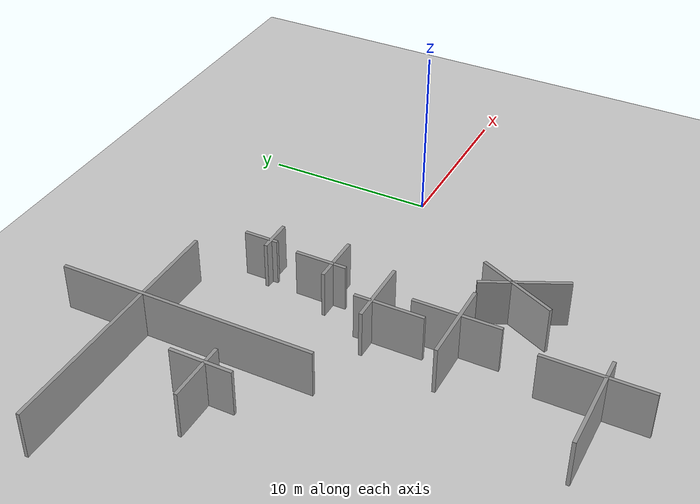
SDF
<sdf version="1.7">
 <world name="default">
  <model name="ground_plane">
   <static>1</static>
   <link name="link">
    <collision name="collision">
     <geometry><plane><normal>0 0 1</normal><size>100 100</size></plane></geometry>
     <surface>
      <contact><collide_bitmask>65535</collide_bitmask></contact>
      <friction><ode><mu>100</mu><mu2>50</mu2></ode></friction>
     </surface>
    </collision>
    <visual name="visual">
     <cast_shadows>0</cast_shadows>
     <geometry><plane><normal>0 0 1</normal><size>100 100</size></plane></geometry>
     <material>
      <script><uri>file://media/materials/scripts/gazebo.material</uri><name>Gazebo/Grey</name></script>
     </material>
    </visual>
   </link>
  </model>
  <model name="grey_wall_4">
   <link name="link">
    <pose>0 0 1.4 0 -0 0</pose>
    <inertial>
     <mass>1</mass>
     <inertia><ixx>1</ixx><ixy>0</ixy><ixz>0</ixz><iyy>1</iyy><iyz>0</iyz><izz>1</izz></inertia>
    </inertial>
    <visual name="visual">
     <cast_shadows>0</cast_shadows>
     <geometry><box><size>4 0.2 2.8</size></box></geometry>
     <material>
      <script>
       <uri>model://grey_wall/materials/scripts</uri>
       <uri>model://grey_wall/materials/textures</uri>
       <name>vrc/grey_wall</name>
      </script>
      <shader type="pixel"><normal_map>__default__</normal_map></shader>
      <ambient>1 1 1 1</ambient>
      <diffuse>1 1 1 1</diffuse>
      <specular>0 0 0 1</specular>
      <emissive>0 0 0 1</emissive>
     </material>
    </visual>
    <collision name="collision">
     <geometry><box><size>4 0.2 2.8</size></box></geometry>
     <surface>
      <friction>
       <ode><mu>1</mu><mu2>1</mu2><fdir1>0 0 0</fdir1><slip1>0</slip1><slip2>0</slip2></ode>
       <torsional>
        <coefficient>1</coefficient>
        <patch_radius>0</patch_radius>
        <surface_radius>0</surface_radius>
        <use_patch_radius>1</use_patch_radius>
        <ode><slip>0</slip></ode>
       </torsional>
      </friction>
      <bounce><restitution_coefficient>0</restitution_coefficient><threshold>1e+06</threshold></bounce>
      <contact>
       <collide_without_contact>0</collide_without_contact>
       <collide_without_contact_bitmask>1</collide_without_contact_bitmask>
       <collide_bitmask>1</collide_bitmask>
       <ode>
        <soft_cfm>0</soft_cfm>
        <soft_erp>0.2</soft_erp>
        <kp>1e+13</kp>
        <kd>1</kd>
        <max_vel>0.01</max_vel>
        <min_depth>0</min_depth>
       </ode>
       <bullet>
        <split_impulse>1</split_impulse>
        <split_impulse_penetration_threshold>-0.01</split_impulse_penetration_threshold>
        <soft_cfm>0</soft_cfm>
        <soft_erp>0.2</soft_erp>
        <kp>1e+13</kp>
        <kd>1</kd>
       </bullet>
      </contact>
     </surface>
    </collision>
   </link>
   <static>1</static>
   <pose>-11.6948 -2.66654 0 0 -0 0</pose>
  </model>
  <model name="grey_wall_4_clone_0_clone">
   <link name="link">
    <pose>0 0 1.4 0 -0 0</pose>
    <inertial>
     <mass>1</mass>
     <inertia><ixx>1</ixx><ixy>0</ixy><ixz>0</ixz><iyy>1</iyy><iyz>0</iyz><izz>1</izz></inertia>
    </inertial>
    <visual name="visual">
     <cast_shadows>0</cast_shadows>
     <geometry><box><size>4 0.2 2.8</size></box></geometry>
     <material>
      <script>
       <uri>model://grey_wall/materials/scripts</uri>
       <uri>model://grey_wall/materials/textures</uri>
       <name>vrc/grey_wall</name>
      </script>
      <shader type="pixel"><normal_map>__default__</normal_map></shader>
      <ambient>1 1 1 1</ambient>
      <diffuse>1 1 1 1</diffuse>
      <specular>0 0 0 1</specular>
      <emissive>0 0 0 1</emissive>
     </material>
    </visual>
    <collision name="collision">
     <geometry><box><size>4 0.2 2.8</size></box></geometry>
     <surface>
      <friction>
       <ode><mu>1</mu><mu2>1</mu2><fdir1>0 0 0</fdir1><slip1>0</slip1><slip2>0</slip2></ode>
       <torsional>
        <coefficient>1</coefficient>
        <patch_radius>0</patch_radius>
        <surface_radius>0</surface_radius>
        <use_patch_radius>1</use_patch_radius>
        <ode><slip>0</slip></ode>
       </torsional>
      </friction>
      <bounce><restitution_coefficient>0</restitution_coefficient><threshold>1e+06</threshold></bounce>
      <contact>
       <collide_without_contact>0</collide_without_contact>
       <collide_without_contact_bitmask>1</collide_without_contact_bitmask>
       <collide_bitmask>1</collide_bitmask>
       <ode>
        <soft_cfm>0</soft_cfm>
        <soft_erp>0.2</soft_erp>
        <kp>1e+13</kp>
        <kd>1</kd>
        <max_vel>0.01</max_vel>
        <min_depth>0</min_depth>
       </ode>
       <bullet>
        <split_impulse>1</split_impulse>
        <split_impulse_penetration_threshold>-0.01</split_impulse_penetration_threshold>
        <soft_cfm>0</soft_cfm>
        <soft_erp>0.2</soft_erp>
        <kp>1e+13</kp>
        <kd>1</kd>
       </bullet>
      </contact>
     </surface>
    </collision>
   </link>
   <static>1</static>
   <pose>-12.4573 -3.6771 0 0 -0 1.57141</pose>
  </model>
  <model name="grey_wall_2_clone">
   <link name="link">
    <pose>0 0 1.4 0 -0 0</pose>
    <inertial>
     <mass>1</mass>
     <inertia><ixx>1</ixx><ixy>0</ixy><ixz>0</ixz><iyy>1</iyy><iyz>0</iyz><izz>1</izz></inertia>
    </inertial>
    <visual name="visual">
     <cast_shadows>0</cast_shadows>
     <geometry><box><size>2 0.2 2.8</size></box></geometry>
     <material>
      <script>
       <uri>model://grey_wall/materials/scripts</uri>
       <uri>model://grey_wall/materials/textures</uri>
       <name>vrc/grey_wall</name>
      </script>
      <shader type="pixel"><normal_map>__default__</normal_map></shader>
      <ambient>1 1 1 1</ambient>
      <diffuse>1 1 1 1</diffuse>
      <specular>0 0 0 1</specular>
      <emissive>0 0 0 1</emissive>
     </material>
    </visual>
    <collision name="collision">
     <geometry><box><size>2 0.2 2.8</size></box></geometry>
     <surface>
      <friction>
       <ode><mu>1</mu><mu2>1</mu2><fdir1>0 0 0</fdir1><slip1>0</slip1><slip2>0</slip2></ode>
       <torsional>
        <coefficient>1</coefficient>
        <patch_radius>0</patch_radius>
        <surface_radius>0</surface_radius>
        <use_patch_radius>1</use_patch_radius>
        <ode><slip>0</slip></ode>
       </torsional>
      </friction>
      <bounce><restitution_coefficient>0</restitution_coefficient><threshold>1e+06</threshold></bounce>
      <contact>
       <collide_without_contact>0</collide_without_contact>
       <collide_without_contact_bitmask>1</collide_without_contact_bitmask>
       <collide_bitmask>1</collide_bitmask>
       <ode>
        <soft_cfm>0</soft_cfm>
        <soft_erp>0.2</soft_erp>
        <kp>1e+13</kp>
        <kd>1</kd>
        <max_vel>0.01</max_vel>
        <min_depth>0</min_depth>
       </ode>
       <bullet>
        <split_impulse>1</split_impulse>
        <split_impulse_penetration_threshold>-0.01</split_impulse_penetration_threshold>
        <soft_cfm>0</soft_cfm>
        <soft_erp>0.2</soft_erp>
        <kp>1e+13</kp>
        <kd>1</kd>
       </bullet>
      </contact>
     </surface>
    </collision>
   </link>
   <static>1</static>
   <pose>-9.95266 4.48403 0 0 -0 0</pose>
  </model>
  <model name="grey_wall_2_clone_0_clone">
   <link name="link">
    <pose>0 0 1.4 0 -0 0</pose>
    <inertial>
     <mass>1</mass>
     <inertia><ixx>1</ixx><ixy>0</ixy><ixz>0</ixz><iyy>1</iyy><iyz>0</iyz><izz>1</izz></inertia>
    </inertial>
    <visual name="visual">
     <cast_shadows>0</cast_shadows>
     <geometry><box><size>2 0.2 2.8</size></box></geometry>
     <material>
      <script>
       <uri>model://grey_wall/materials/scripts</uri>
       <uri>model://grey_wall/materials/textures</uri>
       <name>vrc/grey_wall</name>
      </script>
      <shader type="pixel"><normal_map>__default__</normal_map></shader>
      <ambient>1 1 1 1</ambient>
      <diffuse>1 1 1 1</diffuse>
      <specular>0 0 0 1</specular>
      <emissive>0 0 0 1</emissive>
     </material>
    </visual>
    <collision name="collision">
     <geometry><box><size>2 0.2 2.8</size></box></geometry>
     <surface>
      <friction>
       <ode><mu>1</mu><mu2>1</mu2><fdir1>0 0 0</fdir1><slip1>0</slip1><slip2>0</slip2></ode>
       <torsional>
        <coefficient>1</coefficient>
        <patch_radius>0</patch_radius>
        <surface_radius>0</surface_radius>
        <use_patch_radius>1</use_patch_radius>
        <ode><slip>0</slip></ode>
       </torsional>
      </friction>
      <bounce><restitution_coefficient>0</restitution_coefficient><threshold>1e+06</threshold></bounce>
      <contact>
       <collide_without_contact>0</collide_without_contact>
       <collide_without_contact_bitmask>1</collide_without_contact_bitmask>
       <collide_bitmask>1</collide_bitmask>
       <ode>
        <soft_cfm>0</soft_cfm>
        <soft_erp>0.2</soft_erp>
        <kp>1e+13</kp>
        <kd>1</kd>
        <max_vel>0.01</max_vel>
        <min_depth>0</min_depth>
       </ode>
       <bullet>
        <split_impulse>1</split_impulse>
        <split_impulse_penetration_threshold>-0.01</split_impulse_penetration_threshold>
        <soft_cfm>0</soft_cfm>
        <soft_erp>0.2</soft_erp>
        <kp>1e+13</kp>
        <kd>1</kd>
       </bullet>
      </contact>
     </surface>
    </collision>
   </link>
   <static>1</static>
   <pose>-10.3517 5.08216 0 0 -0 1.5704</pose>
  </model>
  <model name="grey_wall_3">
   <link name="link">
    <pose>0 0 1.4 0 -0 0</pose>
    <inertial>
     <mass>1</mass>
     <inertia><ixx>1</ixx><ixy>0</ixy><ixz>0</ixz><iyy>1</iyy><iyz>0</iyz><izz>1</izz></inertia>
    </inertial>
    <visual name="visual">
     <cast_shadows>0</cast_shadows>
     <geometry><box><size>3 0.2 2.8</size></box></geometry>
     <material>
      <script>
       <uri>model://grey_wall/materials/scripts</uri>
       <uri>model://grey_wall/materials/textures</uri>
       <name>vrc/grey_wall</name>
      </script>
      <shader type="pixel"><normal_map>__default__</normal_map></shader>
      <ambient>1 1 1 1</ambient>
      <diffuse>1 1 1 1</diffuse>
      <specular>0 0 0 1</specular>
      <emissive>0 0 0 1</emissive>
     </material>
    </visual>
    <collision name="collision">
     <geometry><box><size>2.96 0.2 2.8</size></box></geometry>
     <surface>
      <friction>
       <ode><mu>1</mu><mu2>1</mu2><fdir1>0 0 0</fdir1><slip1>0</slip1><slip2>0</slip2></ode>
       <torsional>
        <coefficient>1</coefficient>
        <patch_radius>0</patch_radius>
        <surface_radius>0</surface_radius>
        <use_patch_radius>1</use_patch_radius>
        <ode><slip>0</slip></ode>
       </torsional>
      </friction>
      <bounce><restitution_coefficient>0</restitution_coefficient><threshold>1e+06</threshold></bounce>
      <contact>
       <collide_without_contact>0</collide_without_contact>
       <collide_without_contact_bitmask>1</collide_without_contact_bitmask>
       <collide_bitmask>1</collide_bitmask>
       <ode>
        <soft_cfm>0</soft_cfm>
        <soft_erp>0.2</soft_erp>
        <kp>1e+13</kp>
        <kd>1</kd>
        <max_vel>0.01</max_vel>
        <min_depth>0</min_depth>
       </ode>
       <bullet>
        <split_impulse>1</split_impulse>
        <split_impulse_penetration_threshold>-0.01</split_impulse_penetration_threshold>
        <soft_cfm>0</soft_cfm>
        <soft_erp>0.2</soft_erp>
        <kp>1e+13</kp>
        <kd>1</kd>
       </bullet>
      </contact>
     </surface>
    </collision>
   </link>
   <static>1</static>
   <pose>-10.6592 1.21887 0 0 0 -1.57333</pose>
  </model>
  <model name="grey_wall_3_clone">
   <link name="link">
    <pose>0 0 1.4 0 -0 0</pose>
    <inertial>
     <mass>1</mass>
     <inertia><ixx>1</ixx><ixy>0</ixy><ixz>0</ixz><iyy>1</iyy><iyz>0</iyz><izz>1</izz></inertia>
    </inertial>
    <visual name="visual">
     <cast_shadows>0</cast_shadows>
     <geometry><box><size>3 0.2 2.8</size></box></geometry>
     <material>
      <script>
       <uri>model://grey_wall/materials/scripts</uri>
       <uri>model://grey_wall/materials/textures</uri>
       <name>vrc/grey_wall</name>
      </script>
      <shader type="pixel"><normal_map>__default__</normal_map></shader>
      <ambient>1 1 1 1</ambient>
      <diffuse>1 1 1 1</diffuse>
      <specular>0 0 0 1</specular>
      <emissive>0 0 0 1</emissive>
     </material>
    </visual>
    <collision name="collision">
     <geometry><box><size>2.96 0.2 2.8</size></box></geometry>
     <surface>
      <friction>
       <ode><mu>1</mu><mu2>1</mu2><fdir1>0 0 0</fdir1><slip1>0</slip1><slip2>0</slip2></ode>
       <torsional>
        <coefficient>1</coefficient>
        <patch_radius>0</patch_radius>
        <surface_radius>0</surface_radius>
        <use_patch_radius>1</use_patch_radius>
        <ode><slip>0</slip></ode>
       </torsional>
      </friction>
      <bounce><restitution_coefficient>0</restitution_coefficient><threshold>1e+06</threshold></bounce>
      <contact>
       <collide_without_contact>0</collide_without_contact>
       <collide_without_contact_bitmask>1</collide_without_contact_bitmask>
       <collide_bitmask>1</collide_bitmask>
       <ode>
        <soft_cfm>0</soft_cfm>
        <soft_erp>0.2</soft_erp>
        <kp>1e+13</kp>
        <kd>1</kd>
        <max_vel>0.01</max_vel>
        <min_depth>0</min_depth>
       </ode>
       <bullet>
        <split_impulse>1</split_impulse>
        <split_impulse_penetration_threshold>-0.01</split_impulse_penetration_threshold>
        <soft_cfm>0</soft_cfm>
        <soft_erp>0.2</soft_erp>
        <kp>1e+13</kp>
        <kd>1</kd>
       </bullet>
      </contact>
     </surface>
    </collision>
   </link>
   <static>1</static>
   <pose>-10.2347 0.538112 0 0 -0 0</pose>
  </model>
  <model name="grey_wall_5">
   <link name="link">
    <pose>0 0 1.4 0 -0 0</pose>
    <inertial>
     <mass>1</mass>
     <inertia><ixx>1</ixx><ixy>0</ixy><ixz>0</ixz><iyy>1</iyy><iyz>0</iyz><izz>1</izz></inertia>
    </inertial>
    <visual name="visual">
     <cast_shadows>0</cast_shadows>
     <geometry><box><size>5 0.2 2.8</size></box></geometry>
     <material>
      <script>
       <uri>model://grey_wall/materials/scripts</uri>
       <uri>model://grey_wall/materials/textures</uri>
       <name>vrc/grey_wall</name>
      </script>
      <shader type="pixel"><normal_map>__default__</normal_map></shader>
      <ambient>1 1 1 1</ambient>
      <diffuse>1 1 1 1</diffuse>
      <specular>0 0 0 1</specular>
      <emissive>0 0 0 1</emissive>
     </material>
    </visual>
    <collision name="collision">
     <geometry><box><size>5 0.2 2.8</size></box></geometry>
     <surface>
      <friction>
       <ode><mu>1</mu><mu2>1</mu2><fdir1>0 0 0</fdir1><slip1>0</slip1><slip2>0</slip2></ode>
       <torsional>
        <coefficient>1</coefficient>
        <patch_radius>0</patch_radius>
        <surface_radius>0</surface_radius>
        <use_patch_radius>1</use_patch_radius>
        <ode><slip>0</slip></ode>
       </torsional>
      </friction>
      <bounce><restitution_coefficient>0</restitution_coefficient><threshold>1e+06</threshold></bounce>
      <contact>
       <collide_without_contact>0</collide_without_contact>
       <collide_without_contact_bitmask>1</collide_without_contact_bitmask>
       <collide_bitmask>1</collide_bitmask>
       <ode>
        <soft_cfm>0</soft_cfm>
        <soft_erp>0.2</soft_erp>
        <kp>1e+13</kp>
        <kd>1</kd>
        <max_vel>0.01</max_vel>
        <min_depth>0</min_depth>
       </ode>
       <bullet>
        <split_impulse>1</split_impulse>
        <split_impulse_penetration_threshold>-0.01</split_impulse_penetration_threshold>
        <soft_cfm>0</soft_cfm>
        <soft_erp>0.2</soft_erp>
        <kp>1e+13</kp>
        <kd>1</kd>
       </bullet>
      </contact>
     </surface>
    </collision>
   </link>
   <static>1</static>
   <pose>-11.9319 -7.1493 0 0 0 -0.000612</pose>
  </model>
  <model name="grey_wall_5_clone">
   <link name="link">
    <pose>0 0 1.4 0 -0 0</pose>
    <inertial>
     <mass>1</mass>
     <inertia><ixx>1</ixx><ixy>0</ixy><ixz>0</ixz><iyy>1</iyy><iyz>0</iyz><izz>1</izz></inertia>
    </inertial>
    <visual name="visual">
     <cast_shadows>0</cast_shadows>
     <geometry><box><size>5 0.2 2.8</size></box></geometry>
     <material>
      <script>
       <uri>model://grey_wall/materials/scripts</uri>
       <uri>model://grey_wall/materials/textures</uri>
       <name>vrc/grey_wall</name>
      </script>
      <shader type="pixel"><normal_map>__default__</normal_map></shader>
      <ambient>1 1 1 1</ambient>
      <diffuse>1 1 1 1</diffuse>
      <specular>0 0 0 1</specular>
      <emissive>0 0 0 1</emissive>
     </material>
    </visual>
    <collision name="collision">
     <geometry><box><size>5 0.2 2.8</size></box></geometry>
     <surface>
      <friction>
       <ode><mu>1</mu><mu2>1</mu2><fdir1>0 0 0</fdir1><slip1>0</slip1><slip2>0</slip2></ode>
       <torsional>
        <coefficient>1</coefficient>
        <patch_radius>0</patch_radius>
        <surface_radius>0</surface_radius>
        <use_patch_radius>1</use_patch_radius>
        <ode><slip>0</slip></ode>
       </torsional>
      </friction>
      <bounce><restitution_coefficient>0</restitution_coefficient><threshold>1e+06</threshold></bounce>
      <contact>
       <collide_without_contact>0</collide_without_contact>
       <collide_without_contact_bitmask>1</collide_without_contact_bitmask>
       <collide_bitmask>1</collide_bitmask>
       <ode>
        <soft_cfm>0</soft_cfm>
        <soft_erp>0.2</soft_erp>
        <kp>1e+13</kp>
        <kd>1</kd>
        <max_vel>0.01</max_vel>
        <min_depth>0</min_depth>
       </ode>
       <bullet>
        <split_impulse>1</split_impulse>
        <split_impulse_penetration_threshold>-0.01</split_impulse_penetration_threshold>
        <soft_cfm>0</soft_cfm>
        <soft_erp>0.2</soft_erp>
        <kp>1e+13</kp>
        <kd>1</kd>
       </bullet>
      </contact>
     </surface>
    </collision>
   </link>
   <static>1</static>
   <pose>-11.4339 -6.98062 0 0 -0 1.57141</pose>
  </model>
  <model name="grey_wall_3.6">
   <link name="link">
    <pose>0 0 1.4 0 -0 0</pose>
    <inertial>
     <mass>1</mass>
     <inertia><ixx>1</ixx><ixy>0</ixy><ixz>0</ixz><iyy>1</iyy><iyz>0</iyz><izz>1</izz></inertia>
    </inertial>
    <visual name="visual">
     <cast_shadows>0</cast_shadows>
     <geometry><box><size>3.6 0.2 2.8</size></box></geometry>
     <material>
      <script>
       <uri>model://grey_wall/materials/scripts</uri>
       <uri>model://grey_wall/materials/textures</uri>
       <name>vrc/grey_wall</name>
      </script>
      <shader type="pixel"><normal_map>__default__</normal_map></shader>
      <ambient>1 1 1 1</ambient>
      <diffuse>1 1 1 1</diffuse>
      <specular>0 0 0 1</specular>
      <emissive>0 0 0 1</emissive>
     </material>
    </visual>
    <collision name="collision">
     <geometry><box><size>3.6 0.2 2.8</size></box></geometry>
     <surface>
      <friction>
       <ode><mu>1</mu><mu2>1</mu2><fdir1>0 0 0</fdir1><slip1>0</slip1><slip2>0</slip2></ode>
       <torsional>
        <coefficient>1</coefficient>
        <patch_radius>0</patch_radius>
        <surface_radius>0</surface_radius>
        <use_patch_radius>1</use_patch_radius>
        <ode><slip>0</slip></ode>
       </torsional>
      </friction>
      <bounce><restitution_coefficient>0</restitution_coefficient><threshold>1e+06</threshold></bounce>
      <contact>
       <collide_without_contact>0</collide_without_contact>
       <collide_without_contact_bitmask>1</collide_without_contact_bitmask>
       <collide_bitmask>1</collide_bitmask>
       <ode>
        <soft_cfm>0</soft_cfm>
        <soft_erp>0.2</soft_erp>
        <kp>1e+13</kp>
        <kd>1</kd>
        <max_vel>0.01</max_vel>
        <min_depth>0</min_depth>
       </ode>
       <bullet>
        <split_impulse>1</split_impulse>
        <split_impulse_penetration_threshold>-0.01</split_impulse_penetration_threshold>
        <soft_cfm>0</soft_cfm>
        <soft_erp>0.2</soft_erp>
        <kp>1e+13</kp>
        <kd>1</kd>
       </bullet>
      </contact>
     </surface>
    </collision>
   </link>
   <static>1</static>
   <pose>-20.3272 2.6128 0 0 0 -1.57333</pose>
  </model>
  <model name="grey_wall_3.6_clone">
   <link name="link">
    <pose>0 0 1.4 0 -0 0</pose>
    <inertial>
     <mass>1</mass>
     <inertia><ixx>1</ixx><ixy>0</ixy><ixz>0</ixz><iyy>1</iyy><iyz>0</iyz><izz>1</izz></inertia>
    </inertial>
    <visual name="visual">
     <cast_shadows>0</cast_shadows>
     <geometry><box><size>3.6 0.2 2.8</size></box></geometry>
     <material>
      <script>
       <uri>model://grey_wall/materials/scripts</uri>
       <uri>model://grey_wall/materials/textures</uri>
       <name>vrc/grey_wall</name>
      </script>
      <shader type="pixel"><normal_map>__default__</normal_map></shader>
      <ambient>1 1 1 1</ambient>
      <diffuse>1 1 1 1</diffuse>
      <specular>0 0 0 1</specular>
      <emissive>0 0 0 1</emissive>
     </material>
    </visual>
    <collision name="collision">
     <geometry><box><size>3.6 0.2 2.8</size></box></geometry>
     <surface>
      <friction>
       <ode><mu>1</mu><mu2>1</mu2><fdir1>0 0 0</fdir1><slip1>0</slip1><slip2>0</slip2></ode>
       <torsional>
        <coefficient>1</coefficient>
        <patch_radius>0</patch_radius>
        <surface_radius>0</surface_radius>
        <use_patch_radius>1</use_patch_radius>
        <ode><slip>0</slip></ode>
       </torsional>
      </friction>
      <bounce><restitution_coefficient>0</restitution_coefficient><threshold>1e+06</threshold></bounce>
      <contact>
       <collide_without_contact>0</collide_without_contact>
       <collide_without_contact_bitmask>1</collide_without_contact_bitmask>
       <collide_bitmask>1</collide_bitmask>
       <ode>
        <soft_cfm>0</soft_cfm>
        <soft_erp>0.2</soft_erp>
        <kp>1e+13</kp>
        <kd>1</kd>
        <max_vel>0.01</max_vel>
        <min_depth>0</min_depth>
       </ode>
       <bullet>
        <split_impulse>1</split_impulse>
        <split_impulse_penetration_threshold>-0.01</split_impulse_penetration_threshold>
        <soft_cfm>0</soft_cfm>
        <soft_erp>0.2</soft_erp>
        <kp>1e+13</kp>
        <kd>1</kd>
       </bullet>
      </contact>
     </surface>
    </collision>
   </link>
   <static>1</static>
   <pose>-21.0611 2.37917 0 0 -0 3.14101</pose>
  </model>
  <model name="grey_wall_5_clone_clone_0_clone_1_clone_clone_clone">
   <link name="link">
    <pose>0 0 1.4 0 -0 0</pose>
    <inertial>
     <mass>1</mass>
     <inertia><ixx>1</ixx><ixy>0</ixy><ixz>0</ixz><iyy>1</iyy><iyz>0</iyz><izz>1</izz></inertia>
    </inertial>
    <visual name="visual">
     <cast_shadows>0</cast_shadows>
     <geometry><box><size>5 0.2 2.8</size></box></geometry>
     <material>
      <script>
       <uri>model://grey_wall/materials/scripts</uri>
       <uri>model://grey_wall/materials/textures</uri>
       <name>vrc/grey_wall</name>
      </script>
      <shader type="pixel"><normal_map>__default__</normal_map></shader>
      <ambient>1 1 1 1</ambient>
      <diffuse>1 1 1 1</diffuse>
      <specular>0 0 0 1</specular>
      <emissive>0 0 0 1</emissive>
     </material>
    </visual>
    <collision name="collision">
     <geometry><box><size>5 0.2 2.8</size></box></geometry>
     <surface>
      <friction>
       <ode><mu>1</mu><mu2>1</mu2><fdir1>0 0 0</fdir1><slip1>0</slip1><slip2>0</slip2></ode>
       <torsional>
        <coefficient>1</coefficient>
        <patch_radius>0</patch_radius>
        <surface_radius>0</surface_radius>
        <use_patch_radius>1</use_patch_radius>
        <ode><slip>0</slip></ode>
       </torsional>
      </friction>
      <bounce><restitution_coefficient>0</restitution_coefficient><threshold>1e+06</threshold></bounce>
      <contact>
       <collide_without_contact>0</collide_without_contact>
       <collide_without_contact_bitmask>1</collide_without_contact_bitmask>
       <collide_bitmask>1</collide_bitmask>
       <ode>
        <soft_cfm>0</soft_cfm>
        <soft_erp>0.2</soft_erp>
        <kp>1e+13</kp>
        <kd>1</kd>
        <max_vel>0.01</max_vel>
        <min_depth>0</min_depth>
       </ode>
       <bullet>
        <split_impulse>1</split_impulse>
        <split_impulse_penetration_threshold>-0.01</split_impulse_penetration_threshold>
        <soft_cfm>0</soft_cfm>
        <soft_erp>0.2</soft_erp>
        <kp>1e+13</kp>
        <kd>1</kd>
       </bullet>
      </contact>
     </surface>
    </collision>
   </link>
   <static>1</static>
   <pose>-7.44504 -9.11722 0 0 -0 2.02194</pose>
  </model>
  <model name="grey_wall_5_clone_clone_0_clone_1_clone_clone_0">
   <link name="link">
    <pose>0 0 1.4 0 -0 0</pose>
    <inertial>
     <mass>1</mass>
     <inertia><ixx>1</ixx><ixy>0</ixy><ixz>0</ixz><iyy>1</iyy><iyz>0</iyz><izz>1</izz></inertia>
    </inertial>
    <visual name="visual">
     <cast_shadows>0</cast_shadows>
     <geometry><box><size>5 0.2 2.8</size></box></geometry>
     <material>
      <script>
       <uri>model://grey_wall/materials/scripts</uri>
       <uri>model://grey_wall/materials/textures</uri>
       <name>vrc/grey_wall</name>
      </script>
      <shader type="pixel"><normal_map>__default__</normal_map></shader>
      <ambient>1 1 1 1</ambient>
      <diffuse>1 1 1 1</diffuse>
      <specular>0 0 0 1</specular>
      <emissive>0 0 0 1</emissive>
     </material>
    </visual>
    <collision name="collision">
     <geometry><box><size>5 0.2 2.8</size></box></geometry>
     <surface>
      <friction>
       <ode><mu>1</mu><mu2>1</mu2><fdir1>0 0 0</fdir1><slip1>0</slip1><slip2>0</slip2></ode>
       <torsional>
        <coefficient>1</coefficient>
        <patch_radius>0</patch_radius>
        <surface_radius>0</surface_radius>
        <use_patch_radius>1</use_patch_radius>
        <ode><slip>0</slip></ode>
       </torsional>
      </friction>
      <bounce><restitution_coefficient>0</restitution_coefficient><threshold>1e+06</threshold></bounce>
      <contact>
       <collide_without_contact>0</collide_without_contact>
       <collide_without_contact_bitmask>1</collide_without_contact_bitmask>
       <collide_bitmask>1</collide_bitmask>
       <ode>
        <soft_cfm>0</soft_cfm>
        <soft_erp>0.2</soft_erp>
        <kp>1e+13</kp>
        <kd>1</kd>
        <max_vel>0.01</max_vel>
        <min_depth>0</min_depth>
       </ode>
       <bullet>
        <split_impulse>1</split_impulse>
        <split_impulse_penetration_threshold>-0.01</split_impulse_penetration_threshold>
        <soft_cfm>0</soft_cfm>
        <soft_erp>0.2</soft_erp>
        <kp>1e+13</kp>
        <kd>1</kd>
       </bullet>
      </contact>
     </surface>
    </collision>
   </link>
   <static>1</static>
   <pose>-7.87828 -8.84161 0 0 -0 1.11893</pose>
  </model>
  <model name="grey_wall_6">
   <link name="link">
    <pose>0 0 1.4 0 -0 0</pose>
    <inertial>
     <mass>1</mass>
     <inertia><ixx>1</ixx><ixy>0</ixy><ixz>0</ixz><iyy>1</iyy><iyz>0</iyz><izz>1</izz></inertia>
    </inertial>
    <visual name="visual">
     <cast_shadows>0</cast_shadows>
     <geometry><box><size>6 0.2 2.8</size></box></geometry>
     <material>
      <script>
       <uri>model://grey_wall/materials/scripts</uri>
       <uri>model://grey_wall/materials/textures</uri>
       <name>vrc/grey_wall</name>
      </script>
      <shader type="pixel"><normal_map>__default__</normal_map></shader>
      <ambient>1 1 1 1</ambient>
      <diffuse>1 1 1 1</diffuse>
      <specular>0 0 0 1</specular>
      <emissive>0 0 0 1</emissive>
     </material>
    </visual>
    <collision name="collision">
     <geometry><box><size>6 0.2 2.8</size></box></geometry>
     <surface>
      <friction>
       <ode><mu>1</mu><mu2>1</mu2><fdir1>0 0 0</fdir1><slip1>0</slip1><slip2>0</slip2></ode>
       <torsional>
        <coefficient>1</coefficient>
        <patch_radius>0</patch_radius>
        <surface_radius>0</surface_radius>
        <use_patch_radius>1</use_patch_radius>
        <ode><slip>0</slip></ode>
       </torsional>
      </friction>
      <bounce><restitution_coefficient>0</restitution_coefficient><threshold>1e+06</threshold></bounce>
      <contact>
       <collide_without_contact>0</collide_without_contact>
       <collide_without_contact_bitmask>1</collide_without_contact_bitmask>
       <collide_bitmask>1</collide_bitmask>
       <ode>
        <soft_cfm>0</soft_cfm>
        <soft_erp>0.2</soft_erp>
        <kp>1e+13</kp>
        <kd>1</kd>
        <max_vel>0.01</max_vel>
        <min_depth>0</min_depth>
       </ode>
       <bullet>
        <split_impulse>1</split_impulse>
        <split_impulse_penetration_threshold>-0.01</split_impulse_penetration_threshold>
        <soft_cfm>0</soft_cfm>
        <soft_erp>0.2</soft_erp>
        <kp>1e+13</kp>
        <kd>1</kd>
       </bullet>
      </contact>
     </surface>
    </collision>
   </link>
   <static>1</static>
   <pose>-14.2143 -15.1194 0 0 0 -3.13879</pose>
  </model>
  <model name="grey_wall_6_clone">
   <link name="link">
    <pose>0 0 1.4 0 -0 0</pose>
    <inertial>
     <mass>1</mass>
     <inertia><ixx>1</ixx><ixy>0</ixy><ixz>0</ixz><iyy>1</iyy><iyz>0</iyz><izz>1</izz></inertia>
    </inertial>
    <visual name="visual">
     <cast_shadows>0</cast_shadows>
     <geometry><box><size>6 0.2 2.8</size></box></geometry>
     <material>
      <script>
       <uri>model://grey_wall/materials/scripts</uri>
       <uri>model://grey_wall/materials/textures</uri>
       <name>vrc/grey_wall</name>
      </script>
      <shader type="pixel"><normal_map>__default__</normal_map></shader>
      <ambient>1 1 1 1</ambient>
      <diffuse>1 1 1 1</diffuse>
      <specular>0 0 0 1</specular>
      <emissive>0 0 0 1</emissive>
     </material>
    </visual>
    <collision name="collision">
     <geometry><box><size>6 0.2 2.8</size></box></geometry>
     <surface>
      <friction>
       <ode><mu>1</mu><mu2>1</mu2><fdir1>0 0 0</fdir1><slip1>0</slip1><slip2>0</slip2></ode>
       <torsional>
        <coefficient>1</coefficient>
        <patch_radius>0</patch_radius>
        <surface_radius>0</surface_radius>
        <use_patch_radius>1</use_patch_radius>
        <ode><slip>0</slip></ode>
       </torsional>
      </friction>
      <bounce><restitution_coefficient>0</restitution_coefficient><threshold>1e+06</threshold></bounce>
      <contact>
       <collide_without_contact>0</collide_without_contact>
       <collide_without_contact_bitmask>1</collide_without_contact_bitmask>
       <collide_bitmask>1</collide_bitmask>
       <ode>
        <soft_cfm>0</soft_cfm>
        <soft_erp>0.2</soft_erp>
        <kp>1e+13</kp>
        <kd>1</kd>
        <max_vel>0.01</max_vel>
        <min_depth>0</min_depth>
       </ode>
       <bullet>
        <split_impulse>1</split_impulse>
        <split_impulse_penetration_threshold>-0.01</split_impulse_penetration_threshold>
        <soft_cfm>0</soft_cfm>
        <soft_erp>0.2</soft_erp>
        <kp>1e+13</kp>
        <kd>1</kd>
       </bullet>
      </contact>
     </surface>
    </collision>
   </link>
   <static>1</static>
   <pose>-12.4284 -14.666 0 0 -0 1.57141</pose>
  </model>
  <model name="grey_wall_15_clone_0_clone_0">
   <link name="link">
    <pose>0 0 1.4 0 -0 0</pose>
    <inertial>
     <mass>1</mass>
     <inertia><ixx>1</ixx><ixy>0</ixy><ixz>0</ixz><iyy>1</iyy><iyz>0</iyz><izz>1</izz></inertia>
    </inertial>
    <visual name="visual">
     <cast_shadows>0</cast_shadows>
     <geometry><box><size>15 0.2 2.8</size></box></geometry>
     <material>
      <script>
       <uri>model://grey_wall/materials/scripts</uri>
       <uri>model://grey_wall/materials/textures</uri>
       <name>vrc/grey_wall</name>
      </script>
      <shader type="pixel"><normal_map>__default__</normal_map></shader>
      <ambient>1 1 1 1</ambient>
      <diffuse>1 1 1 1</diffuse>
      <specular>0 0 0 1</specular>
      <emissive>0 0 0 1</emissive>
     </material>
    </visual>
    <collision name="collision">
     <geometry><box><size>15 0.2 2.8</size></box></geometry>
     <surface>
      <friction>
       <ode><mu>1</mu><mu2>1</mu2><fdir1>0 0 0</fdir1><slip1>0</slip1><slip2>0</slip2></ode>
       <torsional>
        <coefficient>1</coefficient>
        <patch_radius>0</patch_radius>
        <surface_radius>0</surface_radius>
        <use_patch_radius>1</use_patch_radius>
        <ode><slip>0</slip></ode>
       </torsional>
      </friction>
      <bounce><restitution_coefficient>0</restitution_coefficient><threshold>1e+06</threshold></bounce>
      <contact>
       <collide_without_contact>0</collide_without_contact>
       <collide_without_contact_bitmask>1</collide_without_contact_bitmask>
       <collide_bitmask>1</collide_bitmask>
       <ode>
        <soft_cfm>0</soft_cfm>
        <soft_erp>0.2</soft_erp>
        <kp>1e+13</kp>
        <kd>1</kd>
        <max_vel>0.01</max_vel>
        <min_depth>0</min_depth>
       </ode>
       <bullet>
        <split_impulse>1</split_impulse>
        <split_impulse_penetration_threshold>-0.01</split_impulse_penetration_threshold>
        <soft_cfm>0</soft_cfm>
        <soft_erp>0.2</soft_erp>
        <kp>1e+13</kp>
        <kd>1</kd>
       </bullet>
      </contact>
     </surface>
    </collision>
   </link>
   <static>1</static>
   <pose>-17.3754 5.54643 0 0 -0 1.57141</pose>
  </model>
  <model name="grey_wall_15_clone_0_clone_clone">
   <link name="link">
    <pose>0 0 1.4 0 -0 0</pose>
    <inertial>
     <mass>1</mass>
     <inertia><ixx>1</ixx><ixy>0</ixy><ixz>0</ixz><iyy>1</iyy><iyz>0</iyz><izz>1</izz></inertia>
    </inertial>
    <visual name="visual">
     <cast_shadows>0</cast_shadows>
     <geometry><box><size>15 0.2 2.8</size></box></geometry>
     <material>
      <script>
       <uri>model://grey_wall/materials/scripts</uri>
       <uri>model://grey_wall/materials/textures</uri>
       <name>vrc/grey_wall</name>
      </script>
      <shader type="pixel"><normal_map>__default__</normal_map></shader>
      <ambient>1 1 1 1</ambient>
      <diffuse>1 1 1 1</diffuse>
      <specular>0 0 0 1</specular>
      <emissive>0 0 0 1</emissive>
     </material>
    </visual>
    <collision name="collision">
     <geometry><box><size>15 0.2 2.8</size></box></geometry>
     <surface>
      <friction>
       <ode><mu>1</mu><mu2>1</mu2><fdir1>0 0 0</fdir1><slip1>0</slip1><slip2>0</slip2></ode>
       <torsional>
        <coefficient>1</coefficient>
        <patch_radius>0</patch_radius>
        <surface_radius>0</surface_radius>
        <use_patch_radius>1</use_patch_radius>
        <ode><slip>0</slip></ode>
       </torsional>
      </friction>
      <bounce><restitution_coefficient>0</restitution_coefficient><threshold>1e+06</threshold></bounce>
      <contact>
       <collide_without_contact>0</collide_without_contact>
       <collide_without_contact_bitmask>1</collide_without_contact_bitmask>
       <collide_bitmask>1</collide_bitmask>
       <ode>
        <soft_cfm>0</soft_cfm>
        <soft_erp>0.2</soft_erp>
        <kp>1e+13</kp>
        <kd>1</kd>
        <max_vel>0.01</max_vel>
        <min_depth>0</min_depth>
       </ode>
       <bullet>
        <split_impulse>1</split_impulse>
        <split_impulse_penetration_threshold>-0.01</split_impulse_penetration_threshold>
        <soft_cfm>0</soft_cfm>
        <soft_erp>0.2</soft_erp>
        <kp>1e+13</kp>
        <kd>1</kd>
       </bullet>
      </contact>
     </surface>
    </collision>
   </link>
   <static>1</static>
   <pose>-19.7903 8.05891 0 0 -0 0.001488</pose>
  </model>
 </world>
</sdf>
